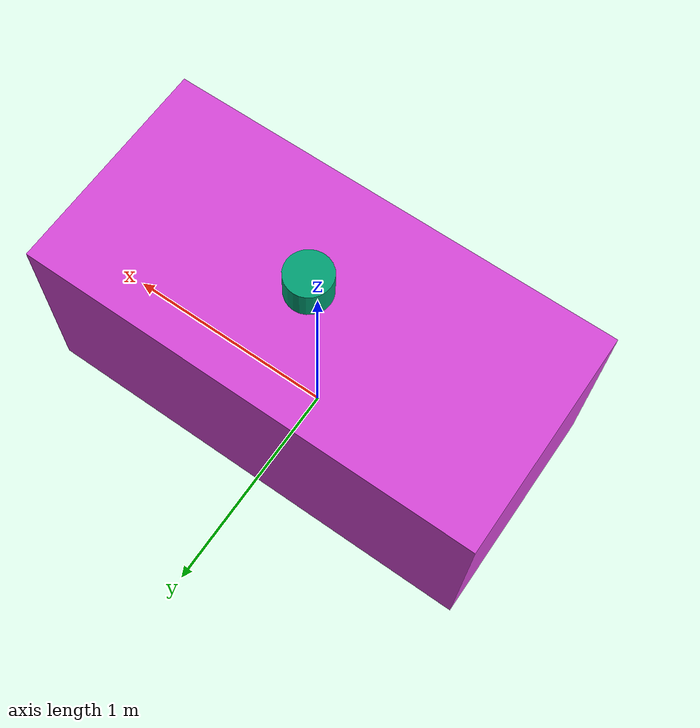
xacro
<?xml version="1.0"?>

<robot name="erp42" xmlns:xacro="http://www.ros.org/xacro">
  <xacro:include filename = "inertia.xacro"/>
  <xacro:include filename = "erp42_macros.xacro"/>
  <xacro:include filename = "gazebo_plugin.xacro"/>

    <!-- ************************ Base Link ******************************** -->
   <link name= "base_footprint"/>

   <joint name="base_joint" type="fixed">
     <parent link="base_footprint"/>
     <child link="base_link"/>
     <origin xyz="0.0 0.0 0.53" rpy="0 0 0"/>
   </joint>

   <link name = "base_link">
    <visual>
        <origin xyz="0 0 0.055" rpy="0 0 0" />
        <geometry>
            <box size = "2.02 0.985 0.906"/>
        </geometry>
        <material name="purple"/>
    </visual>
    <collision>
      <geometry>
            <box size = "2.02 0.985 0.4364"/>
        </geometry>
    </collision>

  </link>
<!-- ########################################Lidar################################### -->
<link name="velodyne">
	    <collision>
	    	<origin xyz="0 0 0.071" rpy="0 0 0"/>
	      	<geometry>
	    		<cylinder radius="0.1" length="0.142"/>
	      	</geometry>
	    </collision>

	    <visual>
	    	<origin xyz="0 0 0.071" rpy="0 0 0"/>
	      	<geometry>
	    		<cylinder radius="0.1" length="0.142"/>
	      	</geometry>
	      	<material name="crusta"/>
	    </visual>

		<inertial>
			<origin xyz="0 0 0" />
			<mass value="1"/>

      <xacro:box_inertia mass="1" x="0.05" y="0.2" z="0.2"/>

		</inertial>
	</link>

	<joint name="lidar_joint" type="fixed">
	    <parent link="base_link"/>
	    <child link="velodyne"/>
	    <origin xyz="0.04 0 0.508" rpy="0 0 0"/>
	</joint>

</robot>

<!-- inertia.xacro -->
<robot>
    <macro name = "box_inertia" params = "mass x y z">
        <inertia ixx="${mass * ((y*y)+(z*z))/12}" ixy="0" ixz="0"
        iyy ="${mass * ((x*x)+(z*z))/12}" iyz="0" izz="${mass * ((y*y)+(x*x))/12}" />
    </macro>
    <macro name="cy_inertia" params = "mass r l">
        <inertia ixx="${mass * (3*r*r+(l*l))/12}" ixy="0" ixz="0"
        iyy ="${mass * (3*r*r+(l*l))/12}" iyz="0" izz="${mass * (r*r)/2}"  />
    </macro>
</robot>

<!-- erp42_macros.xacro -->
<robot  xmlns:xacro="http://www.ros.org/xacro">
  <xacro:include filename = "inertia.xacro"/>
    <material name="purple" >
        <color rgba="0.8392156862745098 0.2823529411764706 0.8431372549019608 1.0" />
    </material>

    <material name="green">
        <color rgba="0.0 0.8 0.0 1.0"/>
    </material>
  <macro name = "car_wheel" params = "name">
        <link name="${name}">
            <visual>
                <origin rpy="1.57079632679 0 0" xyz="0 0 0"/>
                <geometry>
                <cylinder length="0.17" radius="0.265"/>
                </geometry>
                <material name="green"/>
            </visual>
            <collision>
                <origin rpy="0 1.507 1.507" xyz = "0 0 0"/>
                <geometry>
                    <cylinder length="0.025" radius="0.265"/>
                </geometry>
            </collision>
            <inertial>
                 <origin rpy="0 1.507 1.507" xyz = "0 0 0"/>
                <mass value="0.2"/>
                <xacro:cy_inertia mass="26.526" r="0.265" l="0.17" />
            </inertial>
        </link>
    </macro>

    <macro name="wheel_joint" params="name child child_origin">
        <joint name="${name}" type="continuous">
            <axis xyz="0 1 0"/>
            <parent link="base_link"/>
            <child link="${child}"/>
            <origin rpy="0 0 0" xyz="${child_origin}"/>
        </joint>
    </macro>

</robot>
